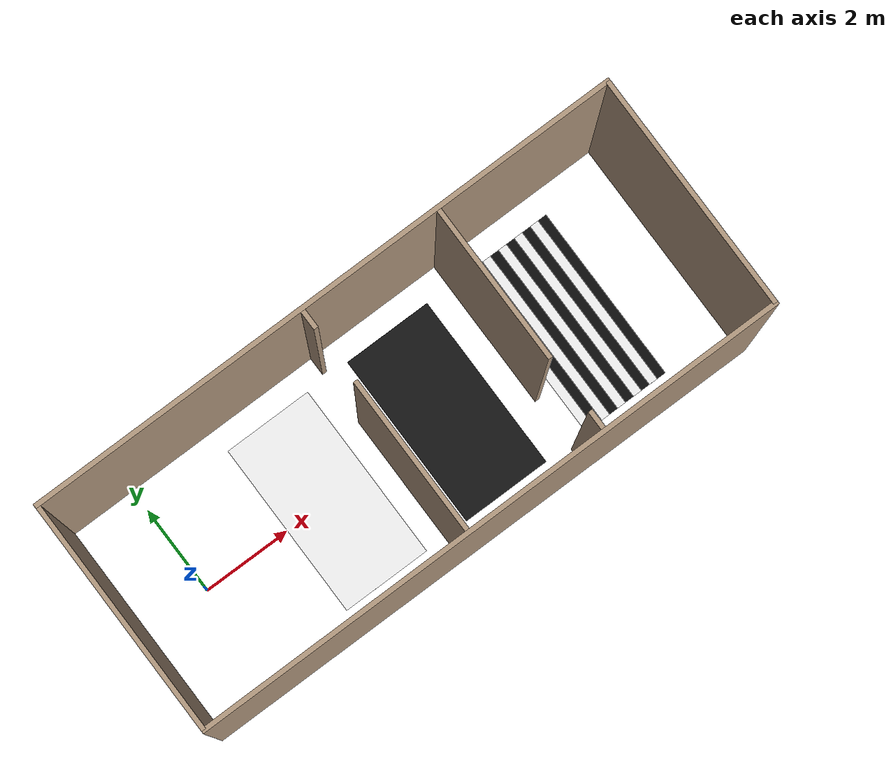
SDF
<sdf version="1.4">
 <world name="default">
  <scene><ambient>1 1 1 1</ambient><origin_visual>false</origin_visual><grid>false</grid></scene>
  <physics type="ode"><max_step_size>0.001</max_step_size></physics>
  <model name="surfaces">
   <static>true</static>
   <link name="link">
    <visual name="blank">
     <pose>3.0 0.0 0.0015 0 0 0</pose>
     <geometry><box><size>2.000 4.000 0.003</size></box></geometry>
     <material>
      <ambient>0.95 0.95 0.95 1</ambient>
      <diffuse>0.95 0.95 0.95 1</diffuse>
      <specular>0 0 0 1</specular>
     </material>
    </visual>
    <visual name="dim">
     <pose>6.0 0.0 0.0015 0 0 0</pose>
     <geometry><box><size>2.000 4.000 0.003</size></box></geometry>
     <material>
      <ambient>0.08 0.08 0.08 1</ambient>
      <diffuse>0.08 0.08 0.08 1</diffuse>
      <specular>0 0 0 1</specular>
     </material>
    </visual>
    <visual name="stripe0">
     <pose>8.1 0.0 0.0015 0 0 0</pose>
     <geometry><box><size>0.200 4.000 0.003</size></box></geometry>
     <material>
      <ambient>0.95 0.95 0.95 1</ambient>
      <diffuse>0.95 0.95 0.95 1</diffuse>
      <specular>0 0 0 1</specular>
     </material>
    </visual>
    <visual name="stripe1">
     <pose>8.3 0.0 0.0015 0 0 0</pose>
     <geometry><box><size>0.200 4.000 0.003</size></box></geometry>
     <material>
      <ambient>0.05 0.05 0.05 1</ambient>
      <diffuse>0.05 0.05 0.05 1</diffuse>
      <specular>0 0 0 1</specular>
     </material>
    </visual>
    <visual name="stripe2">
     <pose>8.5 0.0 0.0015 0 0 0</pose>
     <geometry><box><size>0.200 4.000 0.003</size></box></geometry>
     <material>
      <ambient>0.95 0.95 0.95 1</ambient>
      <diffuse>0.95 0.95 0.95 1</diffuse>
      <specular>0 0 0 1</specular>
     </material>
    </visual>
    <visual name="stripe3">
     <pose>8.7 0.0 0.0015 0 0 0</pose>
     <geometry><box><size>0.200 4.000 0.003</size></box></geometry>
     <material>
      <ambient>0.05 0.05 0.05 1</ambient>
      <diffuse>0.05 0.05 0.05 1</diffuse>
      <specular>0 0 0 1</specular>
     </material>
    </visual>
    <visual name="stripe4">
     <pose>8.9 0.0 0.0015 0 0 0</pose>
     <geometry><box><size>0.200 4.000 0.003</size></box></geometry>
     <material>
      <ambient>0.95 0.95 0.95 1</ambient>
      <diffuse>0.95 0.95 0.95 1</diffuse>
      <specular>0 0 0 1</specular>
     </material>
    </visual>
    <visual name="stripe5">
     <pose>9.1 0.0 0.0015 0 0 0</pose>
     <geometry><box><size>0.200 4.000 0.003</size></box></geometry>
     <material>
      <ambient>0.05 0.05 0.05 1</ambient>
      <diffuse>0.05 0.05 0.05 1</diffuse>
      <specular>0 0 0 1</specular>
     </material>
    </visual>
    <visual name="stripe6">
     <pose>9.3 0.0 0.0015 0 0 0</pose>
     <geometry><box><size>0.200 4.000 0.003</size></box></geometry>
     <material>
      <ambient>0.95 0.95 0.95 1</ambient>
      <diffuse>0.95 0.95 0.95 1</diffuse>
      <specular>0 0 0 1</specular>
     </material>
    </visual>
    <visual name="stripe7">
     <pose>9.5 0.0 0.0015 0 0 0</pose>
     <geometry><box><size>0.200 4.000 0.003</size></box></geometry>
     <material>
      <ambient>0.05 0.05 0.05 1</ambient>
      <diffuse>0.05 0.05 0.05 1</diffuse>
      <specular>0 0 0 1</specular>
     </material>
    </visual>
    <visual name="stripe8">
     <pose>9.7 0.0 0.0015 0 0 0</pose>
     <geometry><box><size>0.200 4.000 0.003</size></box></geometry>
     <material>
      <ambient>0.95 0.95 0.95 1</ambient>
      <diffuse>0.95 0.95 0.95 1</diffuse>
      <specular>0 0 0 1</specular>
     </material>
    </visual>
    <visual name="stripe9">
     <pose>9.9 0.0 0.0015 0 0 0</pose>
     <geometry><box><size>0.200 4.000 0.003</size></box></geometry>
     <material>
      <ambient>0.05 0.05 0.05 1</ambient>
      <diffuse>0.05 0.05 0.05 1</diffuse>
      <specular>0 0 0 1</specular>
     </material>
    </visual>
   </link>
  </model>
  <model name="walls">
   <static>true</static>
   <link name="link">
    <collision name="front">
     <pose>11.5 0 4.5 0 0 0</pose>
     <geometry><box><size>0.1 5.1 9</size></box></geometry>
    </collision>
    <visual name="front">
     <pose>11.5 0 4.5 0 0 0</pose>
     <geometry><box><size>0.1 5.1 9</size></box></geometry>
     <material>
      <ambient>0.7 0.6 0.5 1</ambient>
      <diffuse>0.7 0.6 0.5 1</diffuse>
      <specular>0 0 0 1</specular>
     </material>
    </visual>
    <collision name="back">
     <pose>-1.5 0 4.5 0 0 0</pose>
     <geometry><box><size>0.1 5.1 9</size></box></geometry>
    </collision>
    <visual name="back">
     <pose>-1.5 0 4.5 0 0 0</pose>
     <geometry><box><size>0.1 5.1 9</size></box></geometry>
     <material>
      <ambient>0.7 0.6 0.5 1</ambient>
      <diffuse>0.7 0.6 0.5 1</diffuse>
      <specular>0 0 0 1</specular>
     </material>
    </visual>
    <collision name="left">
     <pose>5 2.55 4.5 0 0 0</pose>
     <geometry><box><size>13.1 0.1 9</size></box></geometry>
    </collision>
    <visual name="left">
     <pose>5 2.55 4.5 0 0 0</pose>
     <geometry><box><size>13.1 0.1 9</size></box></geometry>
     <material>
      <ambient>0.7 0.6 0.5 1</ambient>
      <diffuse>0.7 0.6 0.5 1</diffuse>
      <specular>0 0 0 1</specular>
     </material>
    </visual>
    <collision name="right">
     <pose>5 -2.55 4.5 0 0 0</pose>
     <geometry><box><size>13.1 0.1 9</size></box></geometry>
    </collision>
    <visual name="right">
     <pose>5 -2.55 4.5 0 0 0</pose>
     <geometry><box><size>13.1 0.1 9</size></box></geometry>
     <material>
      <ambient>0.7 0.6 0.5 1</ambient>
      <diffuse>0.7 0.6 0.5 1</diffuse>
      <specular>0 0 0 1</specular>
     </material>
    </visual>
    <collision name="div1a">
     <pose>4.5 -0.8 4.5 0 0 0</pose>
     <geometry><box><size>0.1 3.40 9</size></box></geometry>
    </collision>
    <visual name="div1a">
     <pose>4.5 -0.8 4.5 0 0 0</pose>
     <geometry><box><size>0.1 3.40 9</size></box></geometry>
     <material>
      <ambient>0.7 0.6 0.5 1</ambient>
      <diffuse>0.7 0.6 0.5 1</diffuse>
      <specular>0 0 0 1</specular>
     </material>
    </visual>
    <collision name="div1b">
     <pose>4.5 2.3 4.5 0 0 0</pose>
     <geometry><box><size>0.1 0.40 9</size></box></geometry>
    </collision>
    <visual name="div1b">
     <pose>4.5 2.3 4.5 0 0 0</pose>
     <geometry><box><size>0.1 0.40 9</size></box></geometry>
     <material>
      <ambient>0.7 0.6 0.5 1</ambient>
      <diffuse>0.7 0.6 0.5 1</diffuse>
      <specular>0 0 0 1</specular>
     </material>
    </visual>
    <collision name="div2a">
     <pose>7.6 -2.3 4.5 0 0 0</pose>
     <geometry><box><size>0.1 0.40 9</size></box></geometry>
    </collision>
    <visual name="div2a">
     <pose>7.6 -2.3 4.5 0 0 0</pose>
     <geometry><box><size>0.1 0.40 9</size></box></geometry>
     <material>
      <ambient>0.7 0.6 0.5 1</ambient>
      <diffuse>0.7 0.6 0.5 1</diffuse>
      <specular>0 0 0 1</specular>
     </material>
    </visual>
    <collision name="div2b">
     <pose>7.6 0.8 4.5 0 0 0</pose>
     <geometry><box><size>0.1 3.40 9</size></box></geometry>
    </collision>
    <visual name="div2b">
     <pose>7.6 0.8 4.5 0 0 0</pose>
     <geometry><box><size>0.1 3.40 9</size></box></geometry>
     <material>
      <ambient>0.7 0.6 0.5 1</ambient>
      <diffuse>0.7 0.6 0.5 1</diffuse>
      <specular>0 0 0 1</specular>
     </material>
    </visual>
   </link>
  </model>
  <include><uri>model://sun</uri></include>
 </world>
</sdf>
